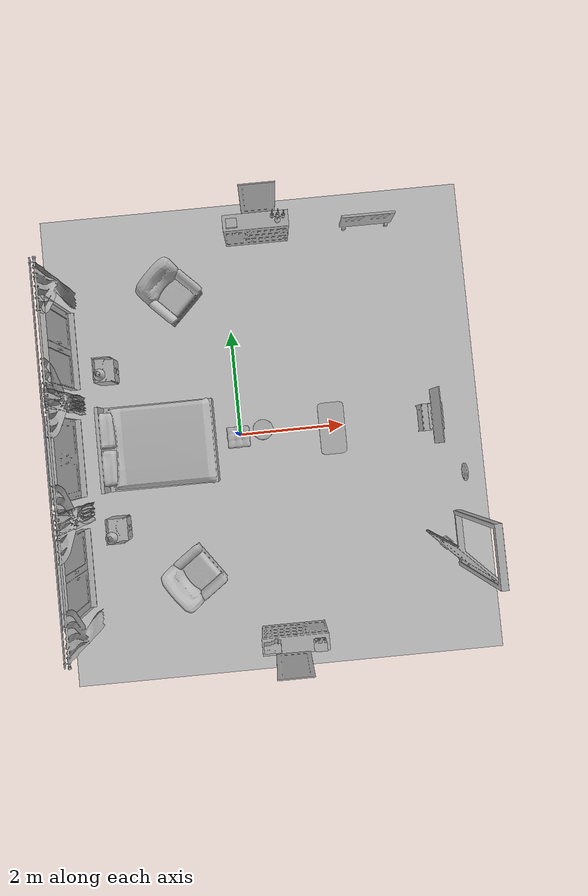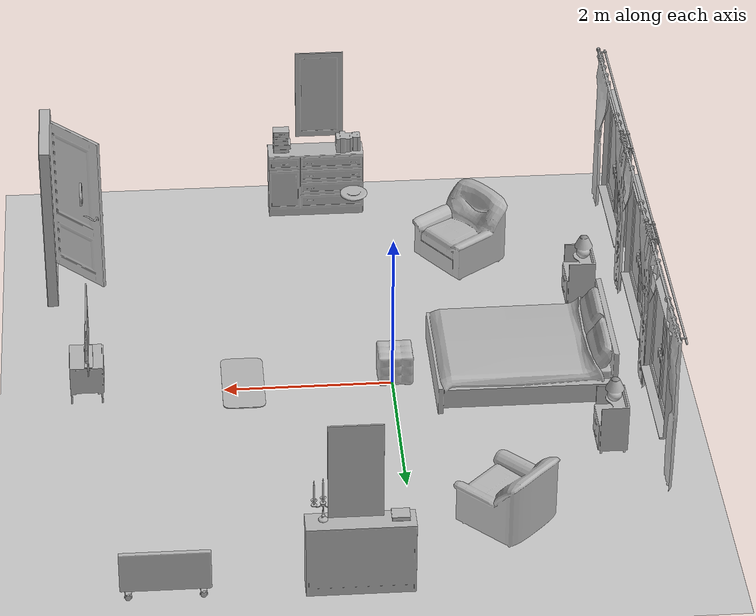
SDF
<sdf version="1.4">
 <world name="default">
  <light name="sun" type="directional">
   <pose>0 0 10 0 -0 0</pose>
   <diffuse>0.8 0.8 0.8 1</diffuse>
   <specular>0.2 0.2 0.2 1</specular>
   <attenuation>
    <range>1000</range>
    <constant>0.9</constant>
    <linear>0.01</linear>
    <quadratic>0.001</quadratic>
   </attenuation>
   <direction>-0.5 0.1 -0.9</direction>
  </light>
  <model name="ground_plane">
   <static>1</static>
   <link name="link">
    <collision name="collision">
     <geometry><plane><normal>0 0 1</normal><size>100 100</size></plane></geometry>
     <surface><friction><ode><mu>100</mu><mu2>50</mu2></ode></friction></surface>
    </collision>
    <visual name="visual">
     <cast_shadows>0</cast_shadows>
     <geometry><plane><normal>0 0 1</normal><size>100 100</size></plane></geometry>
     <material>
      <script><uri>file://media/materials/scripts/gazebo.material</uri><name>Gazebo/Grey</name></script>
     </material>
    </visual>
    <velocity_decay><linear>0</linear><angular>0</angular></velocity_decay>
   </link>
  </model>
  <physics type="ode">
   <max_step_size>0.001</max_step_size>
   <real_time_factor>1</real_time_factor>
   <real_time_update_rate>1000</real_time_update_rate>
   <gravity>0 0 -9.8</gravity>
  </physics>
  <scene><ambient>0.4 0.4 0.4 1</ambient><background>0.7 0.7 0.7 1</background><shadows>1</shadows></scene>
  <spherical_coordinates>
   <surface_model>EARTH_WGS84</surface_model>
   <latitude_deg>0</latitude_deg>
   <longitude_deg>0</longitude_deg>
   <elevation>0</elevation>
   <heading_deg>0</heading_deg>
  </spherical_coordinates>
  <model name="770_0">
   <pose>4.01427 -2.37336 0.04 0 -0 0</pose>
   <static>1</static>
   <link name="link">
    <collision name="collision"><geometry><box><size>0.73 1.06045 2</size></box></geometry></collision>
    <visual name="visual"><geometry><mesh><uri>model://770/770.dae</uri></mesh></geometry></visual>
    <velocity_decay><linear>0</linear><angular>0</angular></velocity_decay>
   </link>
  </model>
  <model name="209_0">
   <pose>-2.91082 -2.13635 0.85 0 -0 0</pose>
   <static>1</static>
   <link name="link">
    <collision name="collision"><geometry><box><size>0.175 1.4 2</size></box></geometry></collision>
    <visual name="visual"><geometry><mesh><uri>model://209/209.dae</uri></mesh></geometry></visual>
    <velocity_decay><linear>0</linear><angular>0</angular></velocity_decay>
   </link>
  </model>
  <model name="209_1">
   <pose>-2.91213 -0.168236 0.85 0 -0 0</pose>
   <static>1</static>
   <link name="link">
    <collision name="collision"><geometry><box><size>0.175 1.4 2</size></box></geometry></collision>
    <visual name="visual"><geometry><mesh><uri>model://209/209.dae</uri></mesh></geometry></visual>
    <velocity_decay><linear>0</linear><angular>0</angular></velocity_decay>
   </link>
  </model>
  <model name="209_2">
   <pose>-2.87051 1.76615 0.85 0 -0 0</pose>
   <static>1</static>
   <link name="link">
    <collision name="collision"><geometry><box><size>0.175 1.4 2</size></box></geometry></collision>
    <visual name="visual"><geometry><mesh><uri>model://209/209.dae</uri></mesh></geometry></visual>
    <velocity_decay><linear>0</linear><angular>0</angular></velocity_decay>
   </link>
  </model>
  <model name="75_0">
   <pose>-1.52477 -0.057083 0.05 0 -0 0</pose>
   <static>1</static>
   <link name="link">
    <collision name="collision"><geometry><box><size>2.1 1.61002 2</size></box></geometry></collision>
    <visual name="visual"><geometry><mesh><uri>model://75/75.dae</uri></mesh></geometry></visual>
    <velocity_decay><linear>0</linear><angular>0</angular></velocity_decay>
   </link>
  </model>
  <model name="235_0">
   <pose>1.77059 -0.042057 0.05 0 -0 0</pose>
   <static>1</static>
   <link name="link">
    <collision name="collision"><geometry><box><size>0.5 1 0</size></box></geometry></collision>
    <visual name="visual"><geometry><mesh><uri>model://235/235.dae</uri></mesh></geometry></visual>
    <velocity_decay><linear>0</linear><angular>0</angular></velocity_decay>
   </link>
  </model>
  <model name="421_0">
   <pose>-2.47582 -1.66206 0.592565 0 -0 0</pose>
   <static>1</static>
   <link name="link">
    <collision name="collision"><geometry><box><size>0.219854 0.219854 2</size></box></geometry></collision>
    <visual name="visual"><geometry><mesh><uri>model://421/421.dae</uri></mesh></geometry></visual>
    <velocity_decay><linear>0</linear><angular>0</angular></velocity_decay>
   </link>
  </model>
  <model name="421_1">
   <pose>-2.44062 1.32038 0.592565 0 -0 0</pose>
   <static>1</static>
   <link name="link">
    <collision name="collision"><geometry><box><size>0.219854 0.219854 2</size></box></geometry></collision>
    <visual name="visual"><geometry><mesh><uri>model://421/421.dae</uri></mesh></geometry></visual>
    <velocity_decay><linear>0</linear><angular>0</angular></velocity_decay>
   </link>
  </model>
  <model name="541_0">
   <pose>-0.030476 -0.048483 0.05 0 -0 0</pose>
   <static>1</static>
   <link name="link">
    <collision name="collision"><geometry><box><size>0.42 0.4 2</size></box></geometry></collision>
    <visual name="visual"><geometry><mesh><uri>model://541/541.dae</uri></mesh></geometry></visual>
    <velocity_decay><linear>0</linear><angular>0</angular></velocity_decay>
   </link>
  </model>
  <model name="195_0">
   <pose>-2.40382 -1.55406 0.05 0 -0 0</pose>
   <static>1</static>
   <link name="link">
    <collision name="collision"><geometry><box><size>0.359753 0.46 2</size></box></geometry></collision>
    <visual name="visual"><geometry><mesh><uri>model://195/195.dae</uri></mesh></geometry></visual>
    <velocity_decay><linear>0</linear><angular>0</angular></velocity_decay>
   </link>
  </model>
  <model name="195_1">
   <pose>-2.39043 1.42194 0.05 0 -0 0</pose>
   <static>1</static>
   <link name="link">
    <collision name="collision"><geometry><box><size>0.359753 0.46 2</size></box></geometry></collision>
    <visual name="visual"><geometry><mesh><uri>model://195/195.dae</uri></mesh></geometry></visual>
    <velocity_decay><linear>0</linear><angular>0</angular></velocity_decay>
   </link>
  </model>
  <model name="129_0">
   <pose>0.666816 3.80291 0.05 0 0 -1.5708</pose>
   <static>1</static>
   <link name="link">
    <collision name="collision"><geometry><box><size>0.304375 1.2 2</size></box></geometry></collision>
    <visual name="visual"><geometry><mesh><uri>model://129/129.dae</uri></mesh></geometry></visual>
    <velocity_decay><linear>0</linear><angular>0</angular></velocity_decay>
   </link>
  </model>
  <model name="129_1">
   <pose>0.667377 -3.81395 0.05 0 -0 1.5708</pose>
   <static>1</static>
   <link name="link">
    <collision name="collision"><geometry><box><size>0.304375 1.2 2</size></box></geometry></collision>
    <visual name="visual"><geometry><mesh><uri>model://129/129.dae</uri></mesh></geometry></visual>
    <velocity_decay><linear>0</linear><angular>0</angular></velocity_decay>
   </link>
  </model>
  <model name="144_0">
   <pose>0.727595 3.91597 1.09 0 0 -1.5708</pose>
   <static>1</static>
   <link name="link">
    <collision name="collision"><geometry><box><size>0.02 0.6 2</size></box></geometry></collision>
    <visual name="visual"><geometry><mesh><uri>model://144/144.dae</uri></mesh></geometry></visual>
    <velocity_decay><linear>0</linear><angular>0</angular></velocity_decay>
   </link>
  </model>
  <model name="144_1">
   <pose>0.609614 -3.91703 1.09 0 -0 1.5708</pose>
   <static>1</static>
   <link name="link">
    <collision name="collision"><geometry><box><size>0.02 0.6 2</size></box></geometry></collision>
    <visual name="visual"><geometry><mesh><uri>model://144/144.dae</uri></mesh></geometry></visual>
    <velocity_decay><linear>0</linear><angular>0</angular></velocity_decay>
   </link>
  </model>
  <model name="147_0">
   <pose>3.59692 -0.018062 0.05 0 -0 3.14159</pose>
   <static>1</static>
   <link name="link">
    <collision name="collision"><geometry><box><size>0.39891 0.5 2</size></box></geometry></collision>
    <visual name="visual"><geometry><mesh><uri>model://147/147.dae</uri></mesh></geometry></visual>
    <velocity_decay><linear>0</linear><angular>0</angular></velocity_decay>
   </link>
  </model>
  <model name="112_0">
   <pose>3.57324 -0.012355 0.553187 0 -0 3.14159</pose>
   <static>1</static>
   <link name="link">
    <collision name="collision"><geometry><box><size>0.099688 0.99 2</size></box></geometry></collision>
    <visual name="visual"><geometry><mesh><uri>model://112/112.dae</uri></mesh></geometry></visual>
    <velocity_decay><linear>0</linear><angular>0</angular></velocity_decay>
   </link>
  </model>
  <model name="148_0">
   <pose>0.23125 3.7846 0.958574 0 -0 0</pose>
   <static>1</static>
   <link name="link">
    <collision name="collision"><geometry><box><size>0.2 0.17 0</size></box></geometry></collision>
    <visual name="visual"><geometry><mesh><uri>model://148/148.dae</uri></mesh></geometry></visual>
    <velocity_decay><linear>0</linear><angular>0</angular></velocity_decay>
   </link>
  </model>
  <model name="319_0">
   <pose>1.08888 -3.82997 0.957641 0 -0 0</pose>
   <static>1</static>
   <link name="link">
    <collision name="collision"><geometry><box><size>0.22 0.19 2</size></box></geometry></collision>
    <visual name="visual"><geometry><mesh><uri>model://319/319.dae</uri></mesh></geometry></visual>
    <velocity_decay><linear>0</linear><angular>0</angular></velocity_decay>
   </link>
  </model>
  <model name="313_0">
   <pose>3.58281 -0.97806 2.05 0 -0 3.14159</pose>
   <static>1</static>
   <link name="link">
    <collision name="collision"><geometry><box><size>0.028 0.28 0</size></box></geometry></collision>
    <visual name="visual"><geometry><mesh><uri>model://313/313.dae</uri></mesh></geometry></visual>
    <velocity_decay><linear>0</linear><angular>0</angular></velocity_decay>
   </link>
  </model>
  <model name="320_0">
   <pose>0.25444 -3.78166 0.952755 0 -0 1.5708</pose>
   <static>1</static>
   <link name="link">
    <collision name="collision"><geometry><box><size>0.18708 0.300509 2</size></box></geometry></collision>
    <visual name="visual"><geometry><mesh><uri>model://320/320.dae</uri></mesh></geometry></visual>
    <velocity_decay><linear>0</linear><angular>0</angular></velocity_decay>
   </link>
  </model>
  <model name="531_0">
   <pose>1.06806 3.7777 0.951418 0 0 -1.66996</pose>
   <static>1</static>
   <link name="link">
    <collision name="collision"><geometry><box><size>0.105612 0.26 2</size></box></geometry></collision>
    <visual name="visual"><geometry><mesh><uri>model://531/531.dae</uri></mesh></geometry></visual>
    <velocity_decay><linear>0</linear><angular>0</angular></velocity_decay>
   </link>
  </model>
  <model name="693_0">
   <pose>-1.06796 -2.55134 0.05 0 -0 0.625604</pose>
   <static>1</static>
   <link name="link">
    <collision name="collision"><geometry><box><size>0.900053 0.9 2</size></box></geometry></collision>
    <visual name="visual"><geometry><mesh><uri>model://693/693.dae</uri></mesh></geometry></visual>
    <velocity_decay><linear>0</linear><angular>0</angular></velocity_decay>
   </link>
  </model>
  <model name="693_1">
   <pose>-1.05239 2.76908 0.05 0 0 -0.785398</pose>
   <static>1</static>
   <link name="link">
    <collision name="collision"><geometry><box><size>0.900053 0.9 2</size></box></geometry></collision>
    <visual name="visual"><geometry><mesh><uri>model://693/693.dae</uri></mesh></geometry></visual>
    <velocity_decay><linear>0</linear><angular>0</angular></velocity_decay>
   </link>
  </model>
  <model name="275_0">
   <pose>-2.83569 -2.14206 0.46 0 -0 0</pose>
   <static>1</static>
   <link name="link">
    <collision name="collision"><geometry><box><size>0.12888 2.44974 2</size></box></geometry></collision>
    <visual name="visual"><geometry><mesh><uri>model://275/275.dae</uri></mesh></geometry></visual>
    <velocity_decay><linear>0</linear><angular>0</angular></velocity_decay>
   </link>
  </model>
  <model name="275_1">
   <pose>-2.84106 -0.192813 0.46 0 -0 0</pose>
   <static>1</static>
   <link name="link">
    <collision name="collision"><geometry><box><size>0.12888 2.44974 2</size></box></geometry></collision>
    <visual name="visual"><geometry><mesh><uri>model://275/275.dae</uri></mesh></geometry></visual>
    <velocity_decay><linear>0</linear><angular>0</angular></velocity_decay>
   </link>
  </model>
  <model name="275_2">
   <pose>-2.84574 1.78194 0.46 0 -0 0</pose>
   <static>1</static>
   <link name="link">
    <collision name="collision"><geometry><box><size>0.12888 2.44974 2</size></box></geometry></collision>
    <visual name="visual"><geometry><mesh><uri>model://275/275.dae</uri></mesh></geometry></visual>
    <velocity_decay><linear>0</linear><angular>0</angular></velocity_decay>
   </link>
  </model>
  <model name="s__487_0">
   <pose>0.462816 -0.018061 2.61 0 -0 0</pose>
   <static>1</static>
   <link name="link">
    <collision name="collision"><geometry><box><size>0.31 0.31 0</size></box></geometry></collision>
    <visual name="visual"><geometry><mesh><uri>model://s__487/s__487.dae</uri></mesh></geometry></visual>
    <velocity_decay><linear>0</linear><angular>0</angular></velocity_decay>
   </link>
  </model>
  <model name="230_0">
   <pose>2.77882 3.83503 0.05 0 0 -1.5708</pose>
   <static>1</static>
   <link name="link">
    <collision name="collision"><geometry><box><size>0.138051 1.00002 2</size></box></geometry></collision>
    <visual name="visual"><geometry><mesh><uri>model://230/230.dae</uri></mesh></geometry></visual>
    <velocity_decay><linear>0</linear><angular>0</angular></velocity_decay>
   </link>
  </model>
 </world>
</sdf>
